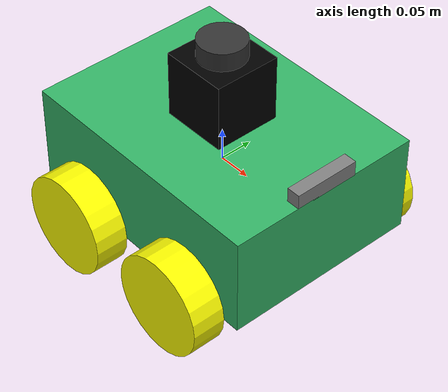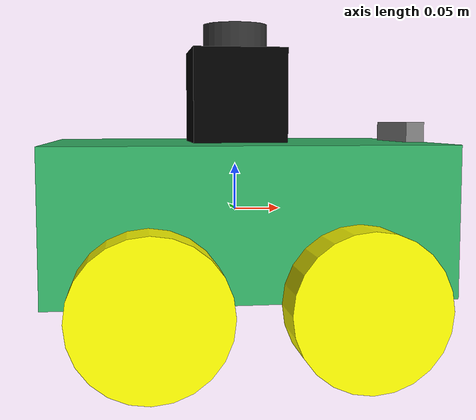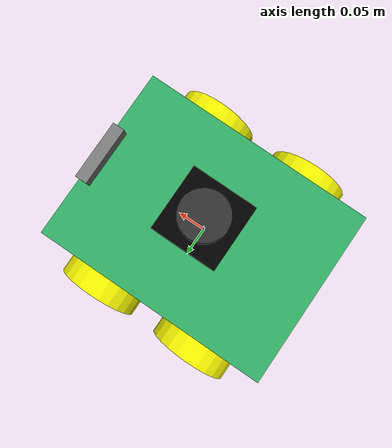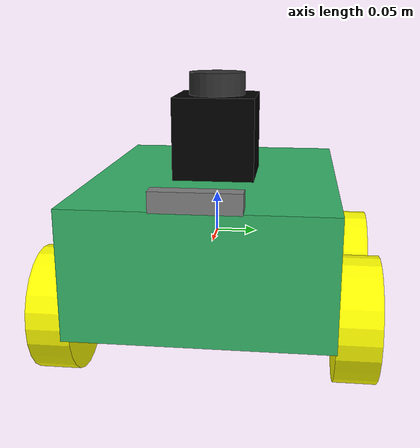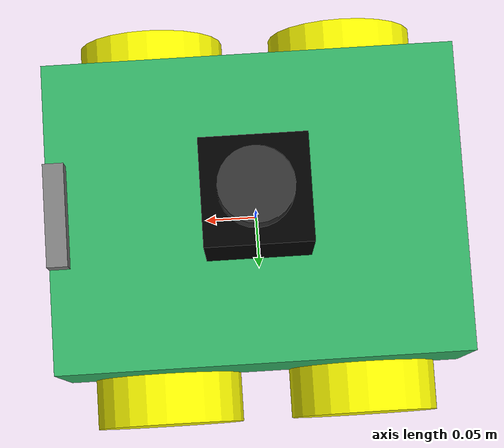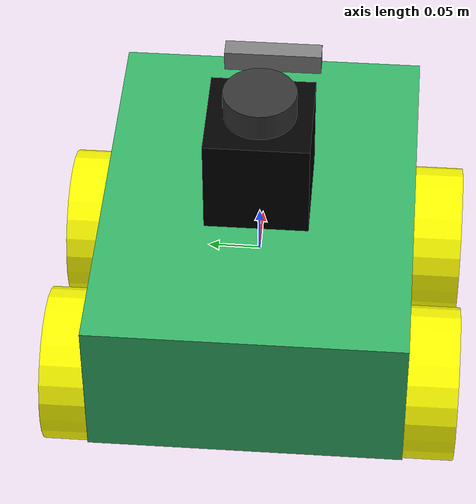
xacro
<?xml version="1.0"?>
<robot xmlns:xacro="http://www.ros.org/wiki/xacro" name="mobile_robot">

  <!-- Defining some properties for reuse -->
  <xacro:property name="body_height" value="0.15"/>
  <xacro:property name="body_width" value="0.3"/>
  <xacro:property name="body_depth" value="0.4"/>
  <xacro:property name="wheel_height" value="0.05"/>
  <xacro:property name="wheel_radius" value="0.075"/>
  <xacro:property name="wheel_color" value="yellow"/>

  <!-- Base link -->
  <link name="base_link">
    <visual>
      <origin rpy="0 0 0" xyz="0 0 0"/>
      <geometry>
        <box size="${body_depth} ${body_width} ${body_height}"/>
      </geometry>
      <material name="green_shade">
        <color rgba="0.2 0.7 0.4 1"/>
      </material>
    </visual>
    <collision>
      <origin rpy="0 0 0" xyz="0 0 0"/>
      <geometry>
        <box size="${body_depth} ${body_width} ${body_height}"/>
      </geometry>
    </collision>
    <inertial>
      <mass value="1.0"/>
      <origin xyz="0 0 0" rpy="0 0 0"/>
      <inertia ixx="0.014167" ixy="0.0" ixz="0.0" iyy="0.026667" iyz="0.0" izz="0.014167"/>
    </inertial>
  </link>

  <!-- Gazebo properties for the base -->
  <gazebo reference="base_link">
    <material>Gazebo/Green</material>
    <mu1>0.5</mu1>
    <mu2>0.5</mu2>
    <selfCollide>false</selfCollide>
  </gazebo>

  <!-- Head of the robot -->
  <link name="head_link">
    <visual>
      <origin rpy="0 0 0" xyz="0 0 0"/>
      <geometry>
        <box size="0.1 0.1 0.1"/>
      </geometry>
      <material name="black">
        <color rgba="0 0 0 1"/>
      </material>
    </visual>
    <collision>
      <origin rpy="0 0 0" xyz="0 0 0"/>
      <geometry>
        <box size="0.1 0.1 0.1"/>
      </geometry>
    </collision>
    <inertial>
      <mass value="0.5"/>
      <origin xyz="0 0 0" rpy="0 0 0"/>
      <inertia ixx="0.001667" ixy="0.0" ixz="0.0" iyy="0.001667" iyz="0.0" izz="0.001667"/>
    </inertial>
  </link>

  <!-- Gazebo properties for the head -->
  <gazebo reference="head_link">
    <material>Gazebo/Black</material>
  </gazebo>

  <!-- Fixed joint for the head -->
  <joint name="head_joint" type="fixed">
    <parent link="base_link"/>
    <child link="head_link"/>
    <origin xyz="0 0 ${body_height/2 + 0.05}" rpy="0 0 0"/>
  </joint>

  <!-- Wheel macro definition -->
  <xacro:macro name="wheel" params="name reflect_x reflect_y">
    <link name="${name}_wheel_link">
      <visual>
        <origin rpy="${pi/2} 0 0" xyz="0 0 0"/>
        <geometry>
          <cylinder length="${wheel_height}" radius="${wheel_radius}"/>
        </geometry>
        <material name="${wheel_color}">
          <color rgba="1 1 0 1"/>
        </material>
      </visual>
      <collision>
        <origin rpy="${pi/2} 0 0" xyz="0 0 0"/>
        <geometry>
          <cylinder length="${wheel_height}" radius="${wheel_radius}"/>
        </geometry>
      </collision>
      <inertial>
        <mass value="0.5"/>
        <origin xyz="0 0 0" rpy="0 0 0"/>
        <inertia ixx="0.001667" ixy="0.0" ixz="0.0" iyy="0.001667" iyz="0.0" izz="0.001667"/>
      </inertial>
    </link>

    <joint name="${name}_wheel_joint" type="continuous">
      <parent link="base_link"/>
      <child link="${name}_wheel_link"/>
      <origin xyz="${reflect_x * body_depth/4} ${reflect_y * (body_width/2 + wheel_height/2)} ${-body_height/2}" rpy="0 0 0"/>
      <axis xyz="0 1 0"/>
    </joint>

    <!-- Transmission for wheel -->
    <transmission name="${name}_wheel_trans">
      <type>transmission_interface/SimpleTransmission</type>
      <actuator name="${name}_wheel_motor">
        <mechanicalReduction>1</mechanicalReduction>
      <hardwareInterface>hardware_interface/VelocityJointInterface</hardwareInterface>
      </actuator>
      <joint name="${name}_wheel_joint">
        <hardwareInterface>hardware_interface/VelocityJointInterface</hardwareInterface>
      </joint>
    </transmission>

    <!-- Gazebo properties for the wheel -->
    <gazebo reference="${name}_wheel_link">
      <material>Gazebo/Yellow</material>
    </gazebo>
  </xacro:macro>

  <!-- Wheels: Front-left, Front-right, Rear-left, Rear-right -->
  <xacro:wheel name="front_left" reflect_x="1" reflect_y="1"/>
  <xacro:wheel name="front_right" reflect_x="1" reflect_y="-1"/>
  <xacro:wheel name="rear_left" reflect_x="-1" reflect_y="1"/>
  <xacro:wheel name="rear_right" reflect_x="-1" reflect_y="-1"/>

  <!-- LDS-02 Link -->
  <link name="lds_link">
    <visual>
      <origin xyz="0 0 0" rpy="0 0 0"/>
      <geometry>
        <cylinder radius="0.035" length="0.035"/>
      </geometry>
      <material name="dark">
        <color rgba="0.2 0.2 0.2 1"/>
      </material>
    </visual>
    <collision>
      <origin xyz="0 0 0" rpy="0 0 0"/>
      <geometry>
        <cylinder radius="0.035" length="0.035"/>
      </geometry>
    </collision>
    <inertial>
      <mass value="0.114"/>
      <origin xyz="0 0 0" rpy="0 0 0"/>
      <inertia ixx="0.001" ixy="0.0" ixz="0.0"
               iyy="0.001" iyz="0.0"
               izz="0.001"/>
    </inertial>
  </link>

  <!-- LDS-02 Joint -->
  <joint name="lds_joint" type="fixed">
    <parent link="base_link"/>
    <child link="lds_link"/>
	<origin xyz="0 0 ${body_height/2 + 0.1 + 0.01}" rpy="0 0 0"/>
  </joint>

  <!-- LDS-02 Gazebo Plugin -->
  <gazebo reference="lds_link">
    <sensor type="ray" name="lds_lfcd_sensor">
      <pose>0 0 0 0 0 0</pose>
      <visualize>false</visualize>
      <update_rate>5</update_rate>
      <ray>
        <scan>
          <horizontal>
            <samples>360</samples>
            <resolution>1</resolution>
            <min_angle>0.0</min_angle>
            <max_angle>6.28319</max_angle>
          </horizontal>
        </scan>
        <range>
          <min>0.120</min>
          <max>3.5</max>
          <resolution>0.015</resolution>
        </range>
        <noise>
          <type>gaussian</type>
          <mean>0.0</mean>
          <stddev>0.01</stddev>
        </noise>
      </ray>
      <plugin name="gazebo_ros_lds_lfcd_controller" filename="libgazebo_ros_laser.so">
        <topicName>scan</topicName>
        <frameName>lds_link</frameName>
      </plugin>
    </sensor>
  </gazebo>

  <!-- RealSense D435i Link -->
  <link name="d435i_link">
    <visual>
      <origin xyz="0 0 0" rpy="0 0 0"/>
      <geometry>
        <box size="0.02 0.099 0.023"/>
      </geometry>
      <material name="aluminum">
        <color rgba="0.5 0.5 0.5 1"/>
      </material>
    </visual>
    <collision>
      <origin xyz="0 0 0" rpy="0 0 0"/>
      <geometry>
        <box size="0.02 0.099 0.023"/>
      </geometry>
    </collision>
    <inertial>
      <mass value="0.072"/>
      <origin xyz="0 0 0" rpy="0 0 0"/>
      <inertia ixx="0.0001" ixy="0.0" ixz="0.0"
               iyy="0.0001" iyz="0.0"
               izz="0.0001"/>
    </inertial>
  </link>

  <!-- RealSense D435i Joint -->
  <joint name="d435i_joint" type="fixed">
    <parent link="base_link"/>
    <child link="d435i_link"/>
    <origin xyz="${body_depth/2 - 0.01} 0 ${body_height/2 + 0.01}" rpy="0 0 0"/>
  </joint>

  <!-- RealSense D435i Gazebo Plugin -->
  <gazebo reference="d435i_link">
    <sensor type="depth" name="d435i">
      <always_on>true</always_on>
      <update_rate>30.0</update_rate>
      <camera name="d435i">
        <horizontal_fov>1.5184</horizontal_fov>
        <image>
          <width>848</width>
          <height>480</height>
          <format>B8G8R8</format>
        </image>
        <clip>
          <near>0.1</near>
          <far>10.0</far>
        </clip>
        <noise>
          <type>gaussian</type>
          <mean>0.0</mean>
          <stddev>0.007</stddev>
        </noise>
      </camera>
      <plugin name="d435i_controller" filename="libgazebo_ros_openni_kinect.so">
        <baseline>0.095</baseline>
        <alwaysOn>true</alwaysOn>
        <updateRate>30.0</updateRate>
        <cameraName>d435i</cameraName>
        <imageTopicName>color/image_raw</imageTopicName>
        <cameraInfoTopicName>color/camera_info</cameraInfoTopicName>
        <depthImageTopicName>depth/image_rect_raw</depthImageTopicName>
        <depthImageInfoTopicName>depth/camera_info</depthImageInfoTopicName>
        <pointCloudTopicName>depth/color/points</pointCloudTopicName>
        <frameName>d435i_link</frameName>
        <pointCloudCutoff>0.1</pointCloudCutoff>
        <pointCloudCutoffMax>10.0</pointCloudCutoffMax>
        <distortionK1>0.00000001</distortionK1>
        <distortionK2>0.00000001</distortionK2>
        <distortionK3>0.00000001</distortionK3>
        <distortionT1>0.00000001</distortionT1>
        <distortionT2>0.00000001</distortionT2>
      </plugin>
    </sensor>

    <!-- IMU sensor for D435i -->
    <sensor name="d435i_imu" type="imu">
      <always_on>true</always_on>
      <update_rate>200</update_rate>
      <visualize>true</visualize>
      <imu>
        <angular_velocity>
          <x><noise type="gaussian"><mean>0.0</mean><stddev>0.00</stddev><bias_mean>0.0</bias_mean><bias_stddev>0.0</bias_stddev></noise></x>
          <y><noise type="gaussian"><mean>0.0</mean><stddev>0.00</stddev><bias_mean>0.0</bias_mean><bias_stddev>0.0</bias_stddev></noise></y>
          <z><noise type="gaussian"><mean>0.0</mean><stddev>0.00</stddev><bias_mean>0.0</bias_mean><bias_stddev>0.0</bias_stddev></noise></z>
        </angular_velocity>
        <linear_acceleration>
          <x><noise type="gaussian"><mean>0.0</mean><stddev>0.00</stddev><bias_mean>0.0</bias_mean><bias_stddev>0.0</bias_stddev></noise></x>
          <y><noise type="gaussian"><mean>0.0</mean><stddev>0.00</stddev><bias_mean>0.0</bias_mean><bias_stddev>0.0</bias_stddev></noise></y>
          <z><noise type="gaussian"><mean>0.0</mean><stddev>0.00</stddev><bias_mean>0.0</bias_mean><bias_stddev>0.0</bias_stddev></noise></z>
        </linear_acceleration>
      </imu>
      <plugin name="d435i_imu_controller" filename="libgazebo_ros_imu_sensor.so">
        <topicName>d435i/imu</topicName>
        <bodyName>d435i_link</bodyName>
        <updateRateHZ>200.0</updateRateHZ>
        <gaussianNoise>0.0</gaussianNoise>
        <xyzOffset>0 0 0</xyzOffset>
        <rpyOffset>0 0 0</rpyOffset>
        <frameName>d435i_link</frameName>
      </plugin>
    </sensor>
  </gazebo>

  <!-- D435i specific TF frames -->
  <link name="d435i_depth_frame"/>
  <joint name="d435i_depth_joint" type="fixed">
    <parent link="d435i_link"/>
    <child link="d435i_depth_frame"/>
    <origin xyz="0 0 0" rpy="0 0 0"/>
  </joint>

  <link name="d435i_color_frame"/>
  <joint name="d435i_color_joint" type="fixed">
    <parent link="d435i_link"/>
    <child link="d435i_color_frame"/>
    <origin xyz="0 0.015 0" rpy="0 0 0"/>
  </joint>

<!--gazebo plugin -->
 <gazebo>
  <plugin name="gazebo_ros_control" filename="libgazebo_ros_control.so">
    <robotNamespace>/</robotNamespace>
    <robotSimType>gazebo_ros_control/DefaultRobotHWSim</robotSimType>
  </plugin>
</gazebo>

<!-- Front Left Wheel -->
<transmission name="front_left_wheel_trans">
  <type>transmission_interface/SimpleTransmission</type>
  <joint name="front_left_wheel_joint">
   <hardwareInterface>hardware_interface/VelocityJointInterface</hardwareInterface>
  </joint>
  <actuator name="front_left_wheel_motor">
    <mechanicalReduction>1</mechanicalReduction>
  <hardwareInterface>hardware_interface/VelocityJointInterface</hardwareInterface>
  </actuator>
</transmission>

<!-- Front Right Wheel -->
<transmission name="front_right_wheel_trans">
  <type>transmission_interface/SimpleTransmission</type>
  <joint name="front_right_wheel_joint">
    <hardwareInterface>hardware_interface/VelocityJointInterface</hardwareInterface>
  </joint>
  <actuator name="front_right_wheel_motor">
    <mechanicalReduction>1</mechanicalReduction>
   <hardwareInterface>hardware_interface/VelocityJointInterface</hardwareInterface>
  </actuator>
</transmission>

<!-- Rear Left Wheel -->
<transmission name="rear_left_wheel_trans">
  <type>transmission_interface/SimpleTransmission</type>
  <joint name="rear_left_wheel_joint">
    <hardwareInterface>hardware_interface/VelocityJointInterface</hardwareInterface>
  </joint>
  <actuator name="rear_left_wheel_motor">
    <mechanicalReduction>1</mechanicalReduction>
  <hardwareInterface>hardware_interface/VelocityJointInterface</hardwareInterface>
  </actuator>
</transmission>

<!-- Rear Right Wheel -->
<transmission name="rear_right_wheel_trans">
  <type>transmission_interface/SimpleTransmission</type>
  <joint name="rear_right_wheel_joint">
    <hardwareInterface>hardware_interface/VelocityJointInterface</hardwareInterface>
  </joint>
  <actuator name="rear_right_wheel_motor">
    <mechanicalReduction>1</mechanicalReduction>
  <hardwareInterface>hardware_interface/VelocityJointInterface</hardwareInterface>
  </actuator>
</transmission>

</robot>
